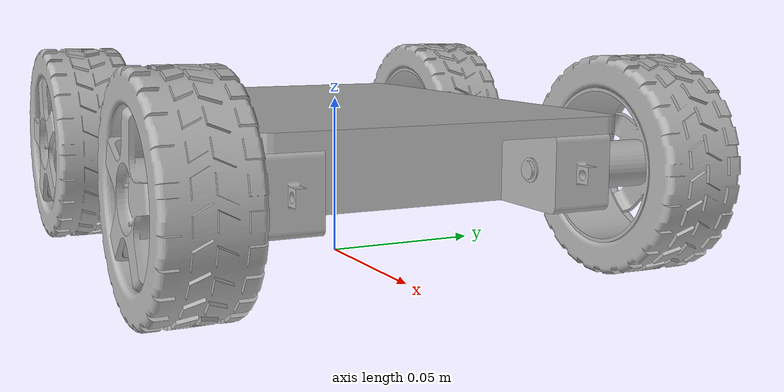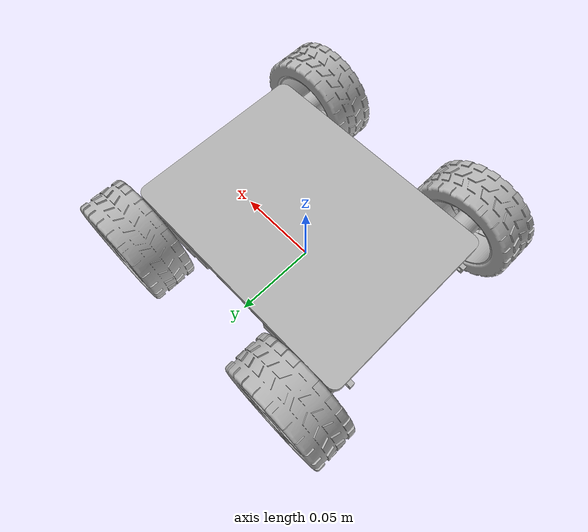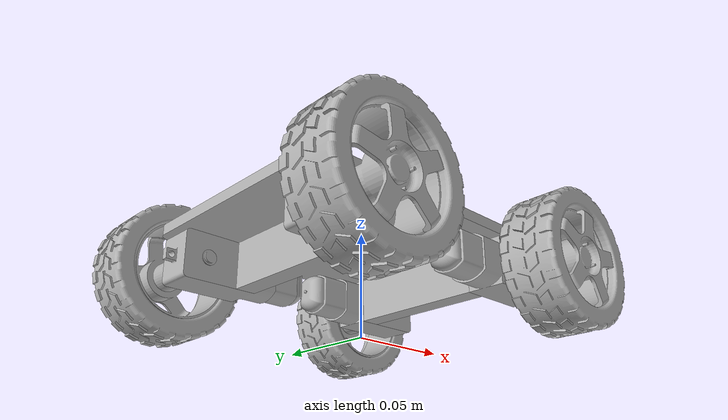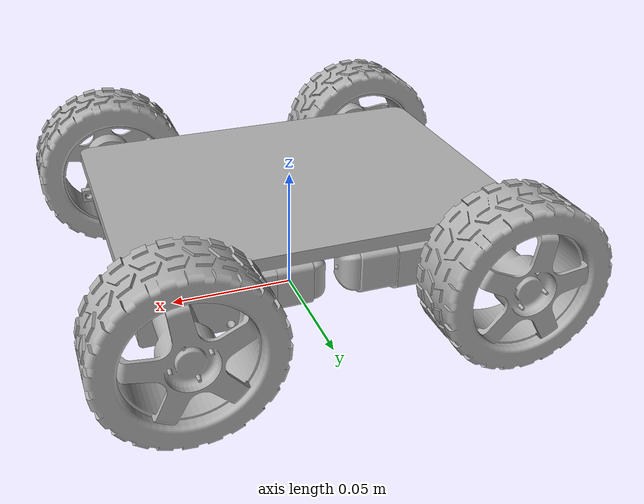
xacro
<?xml version="1.0" ?>
<robot name="rblbot" xmlns:xacro="http://www.ros.org/wiki/xacro">

<xacro:include filename="$(find rblbot_description)/urdf/materials.xacro" />
<xacro:include filename="$(find rblbot_description)/urdf/rblbot.trans" />
<xacro:include filename="$(find rblbot_description)/urdf/rblbot.gazebo" />
<link name="base_link">
  <inertial>
    <origin rpy="0 0 0" xyz="-4.990962486544665e-17 1.6969272454251859e-16 0.0424515688843622"/>
    <mass value="0.8940576877913379"/>
    <inertia ixx="0.000797" ixy="-0.0" ixz="-0.0" iyy="0.001653" iyz="0.0" izz="0.002359"/>
  </inertial>
  <visual>
    <origin rpy="0 0 0" xyz="0 0 0"/>
    <geometry>
      <mesh filename="package://rblbot_description/meshes/base_link.stl" scale="0.001 0.001 0.001"/>
    </geometry>
    <material name="silver"/>
  </visual>
  <collision>
    <origin rpy="0 0 0" xyz="0 0 0"/>
    <geometry>
      <mesh filename="package://rblbot_description/meshes/base_link.stl" scale="0.001 0.001 0.001"/>
    </geometry>
  </collision>
</link>

<link name="motor_gearbox_fr_1">
  <inertial>
    <origin rpy="0 0 0" xyz="0.01340885989703354 -0.009213108094018131 0.01125049043677315"/>
    <mass value="0.036388730782146946"/>
    <inertia ixx="4e-06" ixy="-0.0" ixz="0.0" iyy="1e-05" iyz="-0.0" izz="9e-06"/>
  </inertial>
  <visual>
    <origin rpy="0 0 0" xyz="-0.035 0.035 -0.021254"/>
    <geometry>
      <mesh filename="package://rblbot_description/meshes/motor_gearbox_fr_1.stl" scale="0.001 0.001 0.001"/>
    </geometry>
    <material name="silver"/>
  </visual>
  <collision>
    <origin rpy="0 0 0" xyz="-0.035 0.035 -0.021254"/>
    <geometry>
      <mesh filename="package://rblbot_description/meshes/motor_gearbox_fr_1.stl" scale="0.001 0.001 0.001"/>
    </geometry>
  </collision>
</link>

<link name="motor_gearbox_br_1">
  <inertial>
    <origin rpy="0 0 0" xyz="-0.013408859897033519 -0.009213108094018117 0.01125049043677288"/>
    <mass value="0.036388730782146925"/>
    <inertia ixx="4e-06" ixy="0.0" ixz="-0.0" iyy="1e-05" iyz="-0.0" izz="9e-06"/>
  </inertial>
  <visual>
    <origin rpy="0 0 0" xyz="0.035 0.035 -0.021254"/>
    <geometry>
      <mesh filename="package://rblbot_description/meshes/motor_gearbox_br_1.stl" scale="0.001 0.001 0.001"/>
    </geometry>
    <material name="silver"/>
  </visual>
  <collision>
    <origin rpy="0 0 0" xyz="0.035 0.035 -0.021254"/>
    <geometry>
      <mesh filename="package://rblbot_description/meshes/motor_gearbox_br_1.stl" scale="0.001 0.001 0.001"/>
    </geometry>
  </collision>
</link>

<link name="motor_gearbox_fl_1">
  <inertial>
    <origin rpy="0 0 0" xyz="0.013408859897033429 0.00921310809401829 0.01125049043677315"/>
    <mass value="0.03638873078214622"/>
    <inertia ixx="4e-06" ixy="0.0" ixz="0.0" iyy="1e-05" iyz="0.0" izz="9e-06"/>
  </inertial>
  <visual>
    <origin rpy="0 0 0" xyz="-0.035 -0.035 -0.021254"/>
    <geometry>
      <mesh filename="package://rblbot_description/meshes/motor_gearbox_fl_1.stl" scale="0.001 0.001 0.001"/>
    </geometry>
    <material name="silver"/>
  </visual>
  <collision>
    <origin rpy="0 0 0" xyz="-0.035 -0.035 -0.021254"/>
    <geometry>
      <mesh filename="package://rblbot_description/meshes/motor_gearbox_fl_1.stl" scale="0.001 0.001 0.001"/>
    </geometry>
  </collision>
</link>

<link name="motor_gearbox_bl_1">
  <inertial>
    <origin rpy="0 0 0" xyz="-0.013408859897033588 0.00921310809401829 0.011250490436773137"/>
    <mass value="0.03638873078214621"/>
    <inertia ixx="4e-06" ixy="-0.0" ixz="-0.0" iyy="1e-05" iyz="0.0" izz="9e-06"/>
  </inertial>
  <visual>
    <origin rpy="0 0 0" xyz="0.035 -0.035 -0.021254"/>
    <geometry>
      <mesh filename="package://rblbot_description/meshes/motor_gearbox_bl_1.stl" scale="0.001 0.001 0.001"/>
    </geometry>
    <material name="silver"/>
  </visual>
  <collision>
    <origin rpy="0 0 0" xyz="0.035 -0.035 -0.021254"/>
    <geometry>
      <mesh filename="package://rblbot_description/meshes/motor_gearbox_bl_1.stl" scale="0.001 0.001 0.001"/>
    </geometry>
  </collision>
</link>

<link name="wheel_rim_bl_1">
  <inertial>
    <origin rpy="0 0 0" xyz="5.431504657496533e-07 0.01723522121543517 1.528510742393463e-06"/>
    <mass value="0.057601062843890743"/>
    <inertia ixx="1.1e-05" ixy="-0.0" ixz="-0.0" iyy="1.5e-05" iyz="-0.0" izz="1.1e-05"/>
  </inertial>
  <visual>
    <origin rpy="0 0 0" xyz="0.06 -0.05496 -0.032504"/>
    <geometry>
      <mesh filename="package://rblbot_description/meshes/wheel_rim_bl_1.stl" scale="0.001 0.001 0.001"/>
    </geometry>
    <material name="silver"/>
  </visual>
  <collision>
    <origin rpy="0 0 0" xyz="0.06 -0.05496 -0.032504"/>
    <geometry>
      <mesh filename="package://rblbot_description/meshes/wheel_rim_bl_1.stl" scale="0.001 0.001 0.001"/>
    </geometry>
  </collision>
</link>

<link name="wheel_rim_fl_1">
  <inertial>
    <origin rpy="0 0 0" xyz="-5.308282542484943e-07 0.017235253379376862 1.5308276020142841e-06"/>
    <mass value="0.05760056271807261"/>
    <inertia ixx="1.1e-05" ixy="0.0" ixz="0.0" iyy="1.5e-05" iyz="-0.0" izz="1.1e-05"/>
  </inertial>
  <visual>
    <origin rpy="0 0 0" xyz="-0.06 -0.05496 -0.032504"/>
    <geometry>
      <mesh filename="package://rblbot_description/meshes/wheel_rim_fl_1.stl" scale="0.001 0.001 0.001"/>
    </geometry>
    <material name="silver"/>
  </visual>
  <collision>
    <origin rpy="0 0 0" xyz="-0.06 -0.05496 -0.032504"/>
    <geometry>
      <mesh filename="package://rblbot_description/meshes/wheel_rim_fl_1.stl" scale="0.001 0.001 0.001"/>
    </geometry>
  </collision>
</link>

<link name="wheel_rim_fr_1">
  <inertial>
    <origin rpy="0 0 0" xyz="-5.333467370249867e-07 -0.017235232337285834 1.5189048271357919e-06"/>
    <mass value="0.05760100700095268"/>
    <inertia ixx="1.1e-05" ixy="-0.0" ixz="0.0" iyy="1.5e-05" iyz="0.0" izz="1.1e-05"/>
  </inertial>
  <visual>
    <origin rpy="0 0 0" xyz="-0.06 0.05496 -0.032504"/>
    <geometry>
      <mesh filename="package://rblbot_description/meshes/wheel_rim_fr_1.stl" scale="0.001 0.001 0.001"/>
    </geometry>
    <material name="silver"/>
  </visual>
  <collision>
    <origin rpy="0 0 0" xyz="-0.06 0.05496 -0.032504"/>
    <geometry>
      <mesh filename="package://rblbot_description/meshes/wheel_rim_fr_1.stl" scale="0.001 0.001 0.001"/>
    </geometry>
  </collision>
</link>

<link name="wheel_rim_br_1">
  <inertial>
    <origin rpy="0 0 0" xyz="5.277947178958242e-07 -0.017235229735062065 1.5172354681236566e-06"/>
    <mass value="0.05760099381812663"/>
    <inertia ixx="1.1e-05" ixy="0.0" ixz="-0.0" iyy="1.5e-05" iyz="0.0" izz="1.1e-05"/>
  </inertial>
  <visual>
    <origin rpy="0 0 0" xyz="0.06 0.05496 -0.032504"/>
    <geometry>
      <mesh filename="package://rblbot_description/meshes/wheel_rim_br_1.stl" scale="0.001 0.001 0.001"/>
    </geometry>
    <material name="silver"/>
  </visual>
  <collision>
    <origin rpy="0 0 0" xyz="0.06 0.05496 -0.032504"/>
    <geometry>
      <mesh filename="package://rblbot_description/meshes/wheel_rim_br_1.stl" scale="0.001 0.001 0.001"/>
    </geometry>
  </collision>
</link>

<link name="wheel_tyre_fr_1">
  <inertial>
    <origin rpy="0 0 0" xyz="-6.333185732787516e-09 -0.011497105646493276 4.780255147621149e-07"/>
    <mass value="0.19800736883970116"/>
    <inertia ixx="9.2e-05" ixy="0.0" ixz="-0.0" iyy="0.000156" iyz="0.0" izz="9.2e-05"/>
  </inertial>
  <visual>
    <origin rpy="0 0 0" xyz="-0.06 0.05866 -0.032504"/>
    <geometry>
      <mesh filename="package://rblbot_description/meshes/wheel_tyre_fr_1.stl" scale="0.001 0.001 0.001"/>
    </geometry>
    <material name="silver"/>
  </visual>
  <collision>
    <origin rpy="0 0 0" xyz="-0.06 0.05866 -0.032504"/>
    <geometry>
      <mesh filename="package://rblbot_description/meshes/wheel_tyre_fr_1.stl" scale="0.001 0.001 0.001"/>
    </geometry>
  </collision>
</link>

<link name="motor_shaft_fr_1">
  <inertial>
    <origin rpy="0 0 0" xyz="8.653494587562705e-14 -0.012421126037396313 4.904363563110192e-07"/>
    <mass value="0.005108425148768522"/>
    <inertia ixx="0.0" ixy="-0.0" ixz="0.0" iyy="0.0" iyz="-0.0" izz="0.0"/>
  </inertial>
  <visual>
    <origin rpy="0 0 0" xyz="-0.06 0.035 -0.032504"/>
    <geometry>
      <mesh filename="package://rblbot_description/meshes/motor_shaft_fr_1.stl" scale="0.001 0.001 0.001"/>
    </geometry>
    <material name="silver"/>
  </visual>
  <collision>
    <origin rpy="0 0 0" xyz="-0.06 0.035 -0.032504"/>
    <geometry>
      <mesh filename="package://rblbot_description/meshes/motor_shaft_fr_1.stl" scale="0.001 0.001 0.001"/>
    </geometry>
  </collision>
</link>

<link name="motor_fr_1">
  <inertial>
    <origin rpy="0 0 0" xyz="-0.006993941257278258 6.938893903907228e-18 4.904367730540482e-07"/>
    <mass value="0.033345486553475974"/>
    <inertia ixx="2e-06" ixy="0.0" ixz="0.0" iyy="2e-06" iyz="0.0" izz="1e-06"/>
  </inertial>
  <visual>
    <origin rpy="0 0 0" xyz="-0.023 0.04422 -0.032504"/>
    <geometry>
      <mesh filename="package://rblbot_description/meshes/motor_fr_1.stl" scale="0.001 0.001 0.001"/>
    </geometry>
    <material name="silver"/>
  </visual>
  <collision>
    <origin rpy="0 0 0" xyz="-0.023 0.04422 -0.032504"/>
    <geometry>
      <mesh filename="package://rblbot_description/meshes/motor_fr_1.stl" scale="0.001 0.001 0.001"/>
    </geometry>
  </collision>
</link>

<link name="motor_cap_fr_1">
  <inertial>
    <origin rpy="0 0 0" xyz="-0.0025819066186538618 5.692937055240543e-07 4.38527422291779e-08"/>
    <mass value="0.009229497133387199"/>
    <inertia ixx="0.0" ixy="0.0" ixz="-0.0" iyy="0.0" iyz="0.0" izz="0.0"/>
  </inertial>
  <visual>
    <origin rpy="0 0 0" xyz="-0.009 0.04422 -0.032504"/>
    <geometry>
      <mesh filename="package://rblbot_description/meshes/motor_cap_fr_1.stl" scale="0.001 0.001 0.001"/>
    </geometry>
    <material name="silver"/>
  </visual>
  <collision>
    <origin rpy="0 0 0" xyz="-0.009 0.04422 -0.032504"/>
    <geometry>
      <mesh filename="package://rblbot_description/meshes/motor_cap_fr_1.stl" scale="0.001 0.001 0.001"/>
    </geometry>
  </collision>
</link>

<link name="motor_tip_fr_1">
  <inertial>
    <origin rpy="0 0 0" xyz="-0.0004472849403307339 -9.020562075079397e-17 4.904369516056661e-07"/>
    <mass value="1.2182982002202539e-05"/>
    <inertia ixx="0.0" ixy="0.0" ixz="0.0" iyy="0.0" iyz="0.0" izz="0.0"/>
  </inertial>
  <visual>
    <origin rpy="0 0 0" xyz="-0.003 0.04422 -0.032504"/>
    <geometry>
      <mesh filename="package://rblbot_description/meshes/motor_tip_fr_1.stl" scale="0.001 0.001 0.001"/>
    </geometry>
    <material name="silver"/>
  </visual>
  <collision>
    <origin rpy="0 0 0" xyz="-0.003 0.04422 -0.032504"/>
    <geometry>
      <mesh filename="package://rblbot_description/meshes/motor_tip_fr_1.stl" scale="0.001 0.001 0.001"/>
    </geometry>
  </collision>
</link>

<link name="wheel_tyre_br_1">
  <inertial>
    <origin rpy="0 0 0" xyz="6.319786978459252e-09 -0.011497105494106562 4.780324032657712e-07"/>
    <mass value="0.19800720613745246"/>
    <inertia ixx="9.2e-05" ixy="-0.0" ixz="0.0" iyy="0.000156" iyz="0.0" izz="9.2e-05"/>
  </inertial>
  <visual>
    <origin rpy="0 0 0" xyz="0.06 0.05866 -0.032504"/>
    <geometry>
      <mesh filename="package://rblbot_description/meshes/wheel_tyre_br_1.stl" scale="0.001 0.001 0.001"/>
    </geometry>
    <material name="silver"/>
  </visual>
  <collision>
    <origin rpy="0 0 0" xyz="0.06 0.05866 -0.032504"/>
    <geometry>
      <mesh filename="package://rblbot_description/meshes/wheel_tyre_br_1.stl" scale="0.001 0.001 0.001"/>
    </geometry>
  </collision>
</link>

<link name="motor_shaft_br_1">
  <inertial>
    <origin rpy="0 0 0" xyz="-8.663209039028175e-14 -0.012421126037396417 4.904363561791802e-07"/>
    <mass value="0.00510842514876852"/>
    <inertia ixx="0.0" ixy="0.0" ixz="-0.0" iyy="0.0" iyz="-0.0" izz="0.0"/>
  </inertial>
  <visual>
    <origin rpy="0 0 0" xyz="0.06 0.035 -0.032504"/>
    <geometry>
      <mesh filename="package://rblbot_description/meshes/motor_shaft_br_1.stl" scale="0.001 0.001 0.001"/>
    </geometry>
    <material name="silver"/>
  </visual>
  <collision>
    <origin rpy="0 0 0" xyz="0.06 0.035 -0.032504"/>
    <geometry>
      <mesh filename="package://rblbot_description/meshes/motor_shaft_br_1.stl" scale="0.001 0.001 0.001"/>
    </geometry>
  </collision>
</link>

<link name="motor_br_1">
  <inertial>
    <origin rpy="0 0 0" xyz="0.006993941257278247 -5.551115123125783e-17 4.904367718674973e-07"/>
    <mass value="0.03334548655347591"/>
    <inertia ixx="2e-06" ixy="0.0" ixz="-0.0" iyy="2e-06" iyz="-0.0" izz="1e-06"/>
  </inertial>
  <visual>
    <origin rpy="0 0 0" xyz="0.023 0.04422 -0.032504"/>
    <geometry>
      <mesh filename="package://rblbot_description/meshes/motor_br_1.stl" scale="0.001 0.001 0.001"/>
    </geometry>
    <material name="silver"/>
  </visual>
  <collision>
    <origin rpy="0 0 0" xyz="0.023 0.04422 -0.032504"/>
    <geometry>
      <mesh filename="package://rblbot_description/meshes/motor_br_1.stl" scale="0.001 0.001 0.001"/>
    </geometry>
  </collision>
</link>

<link name="motor_cap_br_1">
  <inertial>
    <origin rpy="0 0 0" xyz="0.0025819079075134694 6.06989668062996e-07 2.10554394128315e-08"/>
    <mass value="0.009229413055020544"/>
    <inertia ixx="0.0" ixy="-0.0" ixz="0.0" iyy="0.0" iyz="0.0" izz="0.0"/>
  </inertial>
  <visual>
    <origin rpy="0 0 0" xyz="0.009 0.04422 -0.032504"/>
    <geometry>
      <mesh filename="package://rblbot_description/meshes/motor_cap_br_1.stl" scale="0.001 0.001 0.001"/>
    </geometry>
    <material name="silver"/>
  </visual>
  <collision>
    <origin rpy="0 0 0" xyz="0.009 0.04422 -0.032504"/>
    <geometry>
      <mesh filename="package://rblbot_description/meshes/motor_cap_br_1.stl" scale="0.001 0.001 0.001"/>
    </geometry>
  </collision>
</link>

<link name="motor_tip_br_1">
  <inertial>
    <origin rpy="0 0 0" xyz="0.00044728494033071525 -9.020562075079397e-17 4.904367695290901e-07"/>
    <mass value="1.2182982002203211e-05"/>
    <inertia ixx="0.0" ixy="0.0" ixz="0.0" iyy="0.0" iyz="-0.0" izz="0.0"/>
  </inertial>
  <visual>
    <origin rpy="0 0 0" xyz="0.003 0.04422 -0.032504"/>
    <geometry>
      <mesh filename="package://rblbot_description/meshes/motor_tip_br_1.stl" scale="0.001 0.001 0.001"/>
    </geometry>
    <material name="silver"/>
  </visual>
  <collision>
    <origin rpy="0 0 0" xyz="0.003 0.04422 -0.032504"/>
    <geometry>
      <mesh filename="package://rblbot_description/meshes/motor_tip_br_1.stl" scale="0.001 0.001 0.001"/>
    </geometry>
  </collision>
</link>

<link name="wheel_tyre_bl_1">
  <inertial>
    <origin rpy="0 0 0" xyz="2.796012768535583e-09 0.011497105646392718 4.890532582166318e-07"/>
    <mass value="0.19800735518744314"/>
    <inertia ixx="9.2e-05" ixy="0.0" ixz="0.0" iyy="0.000156" iyz="-0.0" izz="9.2e-05"/>
  </inertial>
  <visual>
    <origin rpy="0 0 0" xyz="0.06 -0.05866 -0.032504"/>
    <geometry>
      <mesh filename="package://rblbot_description/meshes/wheel_tyre_bl_1.stl" scale="0.001 0.001 0.001"/>
    </geometry>
    <material name="silver"/>
  </visual>
  <collision>
    <origin rpy="0 0 0" xyz="0.06 -0.05866 -0.032504"/>
    <geometry>
      <mesh filename="package://rblbot_description/meshes/wheel_tyre_bl_1.stl" scale="0.001 0.001 0.001"/>
    </geometry>
  </collision>
</link>

<link name="motor_shaft_bl_1">
  <inertial>
    <origin rpy="0 0 0" xyz="-8.663209039028175e-14 0.012421126037396556 4.904363562138747e-07"/>
    <mass value="0.00510842514876852"/>
    <inertia ixx="0.0" ixy="-0.0" ixz="-0.0" iyy="0.0" iyz="0.0" izz="0.0"/>
  </inertial>
  <visual>
    <origin rpy="0 0 0" xyz="0.06 -0.035 -0.032504"/>
    <geometry>
      <mesh filename="package://rblbot_description/meshes/motor_shaft_bl_1.stl" scale="0.001 0.001 0.001"/>
    </geometry>
    <material name="silver"/>
  </visual>
  <collision>
    <origin rpy="0 0 0" xyz="0.06 -0.035 -0.032504"/>
    <geometry>
      <mesh filename="package://rblbot_description/meshes/motor_shaft_bl_1.stl" scale="0.001 0.001 0.001"/>
    </geometry>
  </collision>
</link>

<link name="motor_bl_1">
  <inertial>
    <origin rpy="0 0 0" xyz="0.006993941257278247 2.498001805406602e-16 4.904367719230085e-07"/>
    <mass value="0.03334548655347597"/>
    <inertia ixx="2e-06" ixy="-0.0" ixz="-0.0" iyy="2e-06" iyz="0.0" izz="1e-06"/>
  </inertial>
  <visual>
    <origin rpy="0 0 0" xyz="0.023 -0.04422 -0.032504"/>
    <geometry>
      <mesh filename="package://rblbot_description/meshes/motor_bl_1.stl" scale="0.001 0.001 0.001"/>
    </geometry>
    <material name="silver"/>
  </visual>
  <collision>
    <origin rpy="0 0 0" xyz="0.023 -0.04422 -0.032504"/>
    <geometry>
      <mesh filename="package://rblbot_description/meshes/motor_bl_1.stl" scale="0.001 0.001 0.001"/>
    </geometry>
  </collision>
</link>

<link name="motor_cap_bl_1">
  <inertial>
    <origin rpy="0 0 0" xyz="0.002581906618653861 -5.692937053852765e-07 4.3852742062644445e-08"/>
    <mass value="0.009229497133387197"/>
    <inertia ixx="0.0" ixy="0.0" ixz="0.0" iyy="0.0" iyz="-0.0" izz="0.0"/>
  </inertial>
  <visual>
    <origin rpy="0 0 0" xyz="0.009 -0.04422 -0.032504"/>
    <geometry>
      <mesh filename="package://rblbot_description/meshes/motor_cap_bl_1.stl" scale="0.001 0.001 0.001"/>
    </geometry>
    <material name="silver"/>
  </visual>
  <collision>
    <origin rpy="0 0 0" xyz="0.009 -0.04422 -0.032504"/>
    <geometry>
      <mesh filename="package://rblbot_description/meshes/motor_cap_bl_1.stl" scale="0.001 0.001 0.001"/>
    </geometry>
  </collision>
</link>

<link name="motor_tip_bl_1">
  <inertial>
    <origin rpy="0 0 0" xyz="0.00044728494033072566 2.7755575615628914e-16 4.904367695776624e-07"/>
    <mass value="1.2182982002203225e-05"/>
    <inertia ixx="0.0" ixy="-0.0" ixz="0.0" iyy="0.0" iyz="0.0" izz="0.0"/>
  </inertial>
  <visual>
    <origin rpy="0 0 0" xyz="0.003 -0.04422 -0.032504"/>
    <geometry>
      <mesh filename="package://rblbot_description/meshes/motor_tip_bl_1.stl" scale="0.001 0.001 0.001"/>
    </geometry>
    <material name="silver"/>
  </visual>
  <collision>
    <origin rpy="0 0 0" xyz="0.003 -0.04422 -0.032504"/>
    <geometry>
      <mesh filename="package://rblbot_description/meshes/motor_tip_bl_1.stl" scale="0.001 0.001 0.001"/>
    </geometry>
  </collision>
</link>

<link name="wheel_tyre_fl_1">
  <inertial>
    <origin rpy="0 0 0" xyz="-2.7957009207657535e-09 0.012997105495241093 4.890534188242701e-07"/>
    <mass value="0.19800735756395382"/>
    <inertia ixx="9.2e-05" ixy="-0.0" ixz="-0.0" iyy="0.000156" iyz="-0.0" izz="9.2e-05"/>
  </inertial>
  <visual>
    <origin rpy="0 0 0" xyz="-0.06 -0.05766 -0.032504"/>
    <geometry>
      <mesh filename="package://rblbot_description/meshes/wheel_tyre_fl_1.stl" scale="0.001 0.001 0.001"/>
    </geometry>
    <material name="silver"/>
  </visual>
  <collision>
    <origin rpy="0 0 0" xyz="-0.06 -0.05766 -0.032504"/>
    <geometry>
      <mesh filename="package://rblbot_description/meshes/wheel_tyre_fl_1.stl" scale="0.001 0.001 0.001"/>
    </geometry>
  </collision>
</link>

<link name="motor_shaft_fl_1">
  <inertial>
    <origin rpy="0 0 0" xyz="8.653494587562705e-14 0.012421126037396459 4.90436356130608e-07"/>
    <mass value="0.005108425148768522"/>
    <inertia ixx="0.0" ixy="0.0" ixz="0.0" iyy="0.0" iyz="0.0" izz="0.0"/>
  </inertial>
  <visual>
    <origin rpy="0 0 0" xyz="-0.06 -0.035 -0.032504"/>
    <geometry>
      <mesh filename="package://rblbot_description/meshes/motor_shaft_fl_1.stl" scale="0.001 0.001 0.001"/>
    </geometry>
    <material name="silver"/>
  </visual>
  <collision>
    <origin rpy="0 0 0" xyz="-0.06 -0.035 -0.032504"/>
    <geometry>
      <mesh filename="package://rblbot_description/meshes/motor_shaft_fl_1.stl" scale="0.001 0.001 0.001"/>
    </geometry>
  </collision>
</link>

<link name="motor_fl_1">
  <inertial>
    <origin rpy="0 0 0" xyz="-0.006993941257278279 1.6653345369377348e-16 4.904367728805759e-07"/>
    <mass value="0.03334548655347598"/>
    <inertia ixx="2e-06" ixy="0.0" ixz="0.0" iyy="2e-06" iyz="0.0" izz="1e-06"/>
  </inertial>
  <visual>
    <origin rpy="0 0 0" xyz="-0.023 -0.04422 -0.032504"/>
    <geometry>
      <mesh filename="package://rblbot_description/meshes/motor_fl_1.stl" scale="0.001 0.001 0.001"/>
    </geometry>
    <material name="silver"/>
  </visual>
  <collision>
    <origin rpy="0 0 0" xyz="-0.023 -0.04422 -0.032504"/>
    <geometry>
      <mesh filename="package://rblbot_description/meshes/motor_fl_1.stl" scale="0.001 0.001 0.001"/>
    </geometry>
  </collision>
</link>

<link name="motor_cap_fl_1">
  <inertial>
    <origin rpy="0 0 0" xyz="-0.002581907907513497 -6.069896679172793e-07 2.1055439454464864e-08"/>
    <mass value="0.009229413055020544"/>
    <inertia ixx="0.0" ixy="-0.0" ixz="-0.0" iyy="0.0" iyz="-0.0" izz="0.0"/>
  </inertial>
  <visual>
    <origin rpy="0 0 0" xyz="-0.009 -0.04422 -0.032504"/>
    <geometry>
      <mesh filename="package://rblbot_description/meshes/motor_cap_fl_1.stl" scale="0.001 0.001 0.001"/>
    </geometry>
    <material name="silver"/>
  </visual>
  <collision>
    <origin rpy="0 0 0" xyz="-0.009 -0.04422 -0.032504"/>
    <geometry>
      <mesh filename="package://rblbot_description/meshes/motor_cap_fl_1.stl" scale="0.001 0.001 0.001"/>
    </geometry>
  </collision>
</link>

<link name="motor_tip_fl_1">
  <inertial>
    <origin rpy="0 0 0" xyz="-0.00044728494033074474 1.8735013540549517e-16 4.904369514321938e-07"/>
    <mass value="1.2182982002202539e-05"/>
    <inertia ixx="0.0" ixy="-0.0" ixz="0.0" iyy="0.0" iyz="-0.0" izz="0.0"/>
  </inertial>
  <visual>
    <origin rpy="0 0 0" xyz="-0.003 -0.04422 -0.032504"/>
    <geometry>
      <mesh filename="package://rblbot_description/meshes/motor_tip_fl_1.stl" scale="0.001 0.001 0.001"/>
    </geometry>
    <material name="silver"/>
  </visual>
  <collision>
    <origin rpy="0 0 0" xyz="-0.003 -0.04422 -0.032504"/>
    <geometry>
      <mesh filename="package://rblbot_description/meshes/motor_tip_fl_1.stl" scale="0.001 0.001 0.001"/>
    </geometry>
  </collision>
</link>

<joint name="Rigid1" type="fixed">
  <origin rpy="0 0 0" xyz="0.035 -0.035 0.021254"/>
  <parent link="base_link"/>
  <child link="motor_gearbox_fr_1"/>
</joint>

<joint name="Rigid2" type="fixed">
  <origin rpy="0 0 0" xyz="-0.035 -0.035 0.021254"/>
  <parent link="base_link"/>
  <child link="motor_gearbox_br_1"/>
</joint>

<joint name="Rigid3" type="fixed">
  <origin rpy="0 0 0" xyz="0.035 0.035 0.021254"/>
  <parent link="base_link"/>
  <child link="motor_gearbox_fl_1"/>
</joint>

<joint name="Rigid4" type="fixed">
  <origin rpy="0 0 0" xyz="-0.035 0.035 0.021254"/>
  <parent link="base_link"/>
  <child link="motor_gearbox_bl_1"/>
</joint>

<joint name="motor_joint_bl" type="continuous">
  <origin rpy="0 0 0" xyz="0.0 0.01996 0.0"/>
  <parent link="motor_shaft_bl_1"/>
  <child link="wheel_rim_bl_1"/>
  <axis xyz="0.0 1.0 0.0"/>
</joint>

<joint name="motor_joint_fl" type="continuous">
  <origin rpy="0 0 0" xyz="0.0 0.01996 0.0"/>
  <parent link="motor_shaft_fl_1"/>
  <child link="wheel_rim_fl_1"/>
  <axis xyz="0.0 1.0 0.0"/>
</joint>

<joint name="motor_joint_fr" type="continuous">
  <origin rpy="0 0 0" xyz="0.0 -0.01996 0.0"/>
  <parent link="motor_shaft_fr_1"/>
  <child link="wheel_rim_fr_1"/>
  <axis xyz="0.0 1.0 0.0"/>
</joint>

<joint name="motor_joint_br" type="continuous">
  <origin rpy="0 0 0" xyz="0.0 -0.01996 0.0"/>
  <parent link="motor_shaft_br_1"/>
  <child link="wheel_rim_br_1"/>
  <axis xyz="0.0 1.0 0.0"/>
</joint>

<joint name="Rigid9" type="fixed">
  <origin rpy="0 0 0" xyz="0.0 -0.0037 0.0"/>
  <parent link="wheel_rim_fr_1"/>
  <child link="wheel_tyre_fr_1"/>
</joint>

<joint name="Rigid10" type="fixed">
  <origin rpy="0 0 0" xyz="0.025 0.0 0.01125"/>
  <parent link="motor_gearbox_fr_1"/>
  <child link="motor_shaft_fr_1"/>
</joint>

<joint name="Rigid11" type="fixed">
  <origin rpy="0 0 0" xyz="-0.012 -0.00922 0.01125"/>
  <parent link="motor_gearbox_fr_1"/>
  <child link="motor_fr_1"/>
</joint>

<joint name="Rigid12" type="fixed">
  <origin rpy="0 0 0" xyz="-0.014 0.0 0.0"/>
  <parent link="motor_fr_1"/>
  <child link="motor_cap_fr_1"/>
</joint>

<joint name="Rigid13" type="fixed">
  <origin rpy="0 0 0" xyz="-0.006 0.0 0.0"/>
  <parent link="motor_cap_fr_1"/>
  <child link="motor_tip_fr_1"/>
</joint>

<joint name="Rigid14" type="fixed">
  <origin rpy="0 0 0" xyz="0.0 -0.0037 0.0"/>
  <parent link="wheel_rim_br_1"/>
  <child link="wheel_tyre_br_1"/>
</joint>

<joint name="Rigid15" type="fixed">
  <origin rpy="0 0 0" xyz="-0.025 0.0 0.01125"/>
  <parent link="motor_gearbox_br_1"/>
  <child link="motor_shaft_br_1"/>
</joint>

<joint name="Rigid16" type="fixed">
  <origin rpy="0 0 0" xyz="0.012 -0.00922 0.01125"/>
  <parent link="motor_gearbox_br_1"/>
  <child link="motor_br_1"/>
</joint>

<joint name="Rigid17" type="fixed">
  <origin rpy="0 0 0" xyz="0.014 0.0 0.0"/>
  <parent link="motor_br_1"/>
  <child link="motor_cap_br_1"/>
</joint>

<joint name="Rigid18" type="fixed">
  <origin rpy="0 0 0" xyz="0.006 0.0 0.0"/>
  <parent link="motor_cap_br_1"/>
  <child link="motor_tip_br_1"/>
</joint>

<joint name="Rigid19" type="fixed">
  <origin rpy="0 0 0" xyz="0.0 0.0037 0.0"/>
  <parent link="wheel_rim_bl_1"/>
  <child link="wheel_tyre_bl_1"/>
</joint>

<joint name="Rigid20" type="fixed">
  <origin rpy="0 0 0" xyz="-0.025 0.0 0.01125"/>
  <parent link="motor_gearbox_bl_1"/>
  <child link="motor_shaft_bl_1"/>
</joint>

<joint name="Rigid21" type="fixed">
  <origin rpy="0 0 0" xyz="0.012 0.00922 0.01125"/>
  <parent link="motor_gearbox_bl_1"/>
  <child link="motor_bl_1"/>
</joint>

<joint name="Rigid22" type="fixed">
  <origin rpy="0 0 0" xyz="0.014 0.0 0.0"/>
  <parent link="motor_bl_1"/>
  <child link="motor_cap_bl_1"/>
</joint>

<joint name="Rigid23" type="fixed">
  <origin rpy="0 0 0" xyz="0.006 0.0 0.0"/>
  <parent link="motor_cap_bl_1"/>
  <child link="motor_tip_bl_1"/>
</joint>

<joint name="Rigid24" type="fixed">
  <origin rpy="0 0 0" xyz="0.0 0.0027 0.0"/>
  <parent link="wheel_rim_fl_1"/>
  <child link="wheel_tyre_fl_1"/>
</joint>

<joint name="Rigid25" type="fixed">
  <origin rpy="0 0 0" xyz="0.025 0.0 0.01125"/>
  <parent link="motor_gearbox_fl_1"/>
  <child link="motor_shaft_fl_1"/>
</joint>

<joint name="Rigid26" type="fixed">
  <origin rpy="0 0 0" xyz="-0.012 0.00922 0.01125"/>
  <parent link="motor_gearbox_fl_1"/>
  <child link="motor_fl_1"/>
</joint>

<joint name="Rigid27" type="fixed">
  <origin rpy="0 0 0" xyz="-0.014 0.0 0.0"/>
  <parent link="motor_fl_1"/>
  <child link="motor_cap_fl_1"/>
</joint>

<joint name="Rigid28" type="fixed">
  <origin rpy="0 0 0" xyz="-0.006 0.0 0.0"/>
  <parent link="motor_cap_fl_1"/>
  <child link="motor_tip_fl_1"/>
</joint>

</robot>

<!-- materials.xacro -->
<robot name="rblbot" xmlns:xacro="http://www.ros.org/wiki/xacro" >

<material name="silver">
  <color rgba="0.700 0.700 0.700 1.000"/>
</material>

</robot>

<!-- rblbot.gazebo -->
<robot name="rblbot" xmlns:xacro="http://www.ros.org/wiki/xacro" >

<xacro:property name="body_color" value="Gazebo/Silver" />
<xacro:property name="yellow_color" value="Gazebo/Yellow" />
<xacro:property name="black_color" value="Gazebo/DarkGrey" />
<xacro:property name="dark_grey_color" value="Gazebo/Grey" />

<gazebo>
  <plugin filename="libgazebo_ros_control.so" name="gazebo_ros_control">
    <robotNamespace>/rblbot</robotNamespace>
    <robotSimType>gazebo_ros_control/DefaultRobotHWSim</robotSimType>
    <legacyModeNS>true</legacyModeNS>
  </plugin>
</gazebo>

 <gazebo>
  <plugin name="skid_steer_drive_controller" filename="libgazebo_ros_skid_steer_drive.so">
    <updateRate>100.0</updateRate>
    <robotNamespace>/</robotNamespace>
    <leftFrontJoint>motor_joint_fl</leftFrontJoint>
    <rightFrontJoint>motor_joint_fr</rightFrontJoint>
    <leftRearJoint>motor_joint_bl</leftRearJoint>
    <rightRearJoint>motor_joint_br</rightRearJoint>
    <wheelSeparation>0.140820</wheelSeparation>
    <wheelDiameter>0.065</wheelDiameter>
    <robotBaseFrame>base_link</robotBaseFrame>
    <torque>5</torque>
    <topicName>/cmd_vel</topicName>
    <broadcastTF>false</broadcastTF>
  </plugin>
</gazebo>

<gazebo reference="base_link">
  <material>${body_color}</material>
  <mu1>0.2</mu1>
  <mu2>0.2</mu2>
  <selfCollide>false</selfCollide>
  <gravity>true</gravity>
</gazebo>

<gazebo reference="motor_gearbox_fr_1">
  <material>${yellow_color}</material>
  <mu1>0.2</mu1>
  <mu2>0.2</mu2>
  <selfCollide>false</selfCollide>
</gazebo>

<gazebo reference="motor_gearbox_br_1">
  <material>${yellow_color}</material>
  <mu1>0.2</mu1>
  <mu2>0.2</mu2>
  <selfCollide>false</selfCollide>
</gazebo>

<gazebo reference="motor_gearbox_fl_1">
  <material>${yellow_color}</material>
  <mu1>0.2</mu1>
  <mu2>0.2</mu2>
  <selfCollide>false</selfCollide>
</gazebo>

<gazebo reference="motor_gearbox_bl_1">
  <material>${yellow_color}</material>
  <mu1>0.2</mu1>
  <mu2>0.2</mu2>
  <selfCollide>false</selfCollide>
</gazebo>

<gazebo reference="wheel_rim_bl_1">
  <material>${yellow_color}</material>
  <mu1>0.2</mu1>
  <mu2>0.2</mu2>
  <selfCollide>false</selfCollide>
</gazebo>

<gazebo reference="wheel_rim_fl_1">
  <material>${yellow_color}</material>
  <mu1>0.2</mu1>
  <mu2>0.2</mu2>
  <selfCollide>false</selfCollide>
</gazebo>

<gazebo reference="wheel_rim_fr_1">
  <material>${yellow_color}</material>
  <mu1>0.2</mu1>
  <mu2>0.2</mu2>
  <selfCollide>false</selfCollide>
</gazebo>

<gazebo reference="wheel_rim_br_1">
  <material>${yellow_color}</material>
  <mu1>0.2</mu1>
  <mu2>0.2</mu2>
  <selfCollide>false</selfCollide>
</gazebo>

<gazebo reference="wheel_tyre_fr_1">
  <material>${black_color}</material>
  <mu1>10</mu1>
  <mu2>10</mu2>
  <selfCollide>false</selfCollide>
</gazebo>

<gazebo reference="motor_shaft_fr_1">
  <material>${body_color}</material>
  <mu1>0.2</mu1>
  <mu2>0.2</mu2>
  <selfCollide>false</selfCollide>
</gazebo>

<gazebo reference="motor_fr_1">
  <material>${dark_grey_color}</material>
  <mu1>0.2</mu1>
  <mu2>0.2</mu2>
  <selfCollide>false</selfCollide>
</gazebo>

<gazebo reference="motor_cap_fr_1">
  <material>${black_color}</material>
  <mu1>0.2</mu1>
  <mu2>0.2</mu2>
  <selfCollide>false</selfCollide>
</gazebo>

<gazebo reference="motor_tip_fr_1">
  <material>${body_color}</material>
  <mu1>0.2</mu1>
  <mu2>0.2</mu2>
  <selfCollide>false</selfCollide>
</gazebo>

<gazebo reference="wheel_tyre_br_1">
  <material>${black_color}</material>
  <mu1>10</mu1>
  <mu2>10</mu2>
  <selfCollide>false</selfCollide>
</gazebo>

<gazebo reference="motor_shaft_br_1">
  <material>${body_color}</material>
  <mu1>0.2</mu1>
  <mu2>0.2</mu2>
  <selfCollide>false</selfCollide>
</gazebo>

<gazebo reference="motor_br_1">
  <material>${dark_grey_color}</material>
  <mu1>0.2</mu1>
  <mu2>0.2</mu2>
  <selfCollide>false</selfCollide>
</gazebo>

<gazebo reference="motor_cap_br_1">
  <material>${black_color}</material>
  <mu1>0.2</mu1>
  <mu2>0.2</mu2>
  <selfCollide>false</selfCollide>
</gazebo>

<gazebo reference="motor_tip_br_1">
  <material>${body_color}</material>
  <mu1>0.2</mu1>
  <mu2>0.2</mu2>
  <selfCollide>false</selfCollide>
</gazebo>

<gazebo reference="wheel_tyre_bl_1">
  <material>${black_color}</material>
  <mu1>10</mu1>
  <mu2>10</mu2>
  <selfCollide>false</selfCollide>
</gazebo>

<gazebo reference="motor_shaft_bl_1">
  <material>${body_color}</material>
  <mu1>0.2</mu1>
  <mu2>0.2</mu2>
  <selfCollide>false</selfCollide>
</gazebo>

<gazebo reference="motor_bl_1">
  <material>${dark_grey_color}</material>
  <mu1>0.2</mu1>
  <mu2>0.2</mu2>
  <selfCollide>false</selfCollide>
</gazebo>

<gazebo reference="motor_cap_bl_1">
  <material>${black_color}</material>
  <mu1>0.2</mu1>
  <mu2>0.2</mu2>
  <selfCollide>false</selfCollide>
</gazebo>

<gazebo reference="motor_tip_bl_1">
  <material>${body_color}</material>
  <mu1>0.2</mu1>
  <mu2>0.2</mu2>
  <selfCollide>false</selfCollide>
</gazebo>

<gazebo reference="wheel_tyre_fl_1">
  <material>${black_color}</material>
  <mu1>10</mu1>
  <mu2>10</mu2>
  <selfCollide>false</selfCollide>
</gazebo>

<gazebo reference="motor_shaft_fl_1">
  <material>${body_color}</material>
  <mu1>0.2</mu1>
  <mu2>0.2</mu2>
  <selfCollide>false</selfCollide>
</gazebo>

<gazebo reference="motor_fl_1">
  <material>${dark_grey_color}</material>
  <mu1>0.2</mu1>
  <mu2>0.2</mu2>
  <selfCollide>false</selfCollide>
</gazebo>

<gazebo reference="motor_cap_fl_1">
  <material>${black_color}</material>
  <mu1>0.2</mu1>
  <mu2>0.2</mu2>
  <selfCollide>false</selfCollide>
</gazebo>

<gazebo reference="motor_tip_fl_1">
  <material>${body_color}</material>
  <mu1>0.2</mu1>
  <mu2>0.2</mu2>
  <selfCollide>false</selfCollide>
</gazebo>

</robot>
